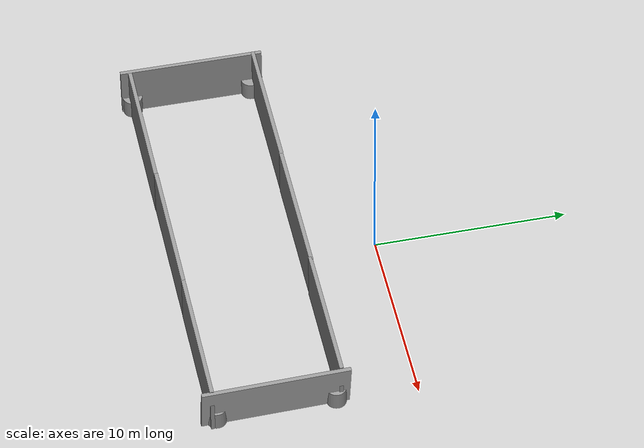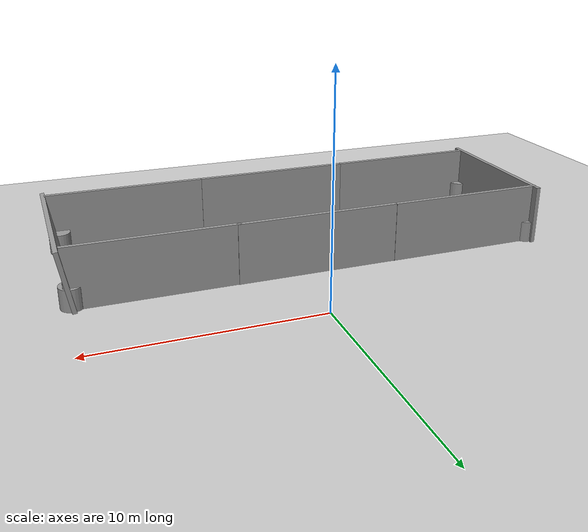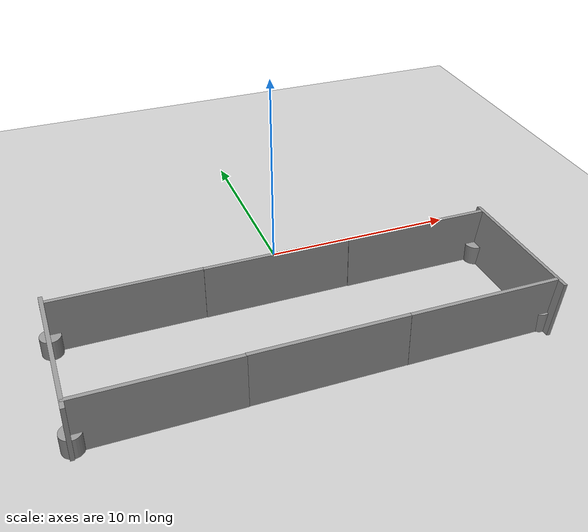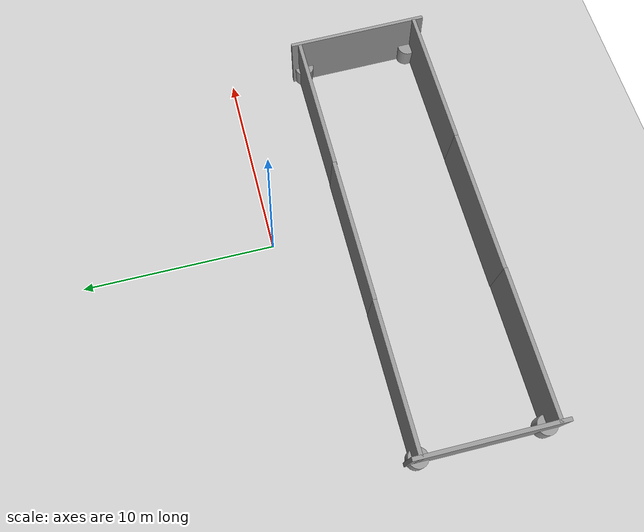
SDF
<sdf version="1.6">
 <world name="default">
  <light name="sun" type="directional">
   <pose>0 0 10 0 -0 0</pose>
   <diffuse>0.8 0.8 0.8 1</diffuse>
   <specular>0.2 0.2 0.2 1</specular>
   <attenuation>
    <range>1000</range>
    <constant>0.9</constant>
    <linear>0.01</linear>
    <quadratic>0.001</quadratic>
   </attenuation>
   <direction>-0.5 0.1 -0.9</direction>
  </light>
  <model name="ground_plane">
   <static>1</static>
   <link name="link">
    <collision name="collision">
     <geometry><plane><normal>0 0 1</normal><size>100 100</size></plane></geometry>
     <surface>
      <contact><collide_bitmask>65535</collide_bitmask></contact>
      <friction><ode><mu>100</mu><mu2>50</mu2></ode></friction>
     </surface>
    </collision>
    <visual name="visual">
     <cast_shadows>0</cast_shadows>
     <geometry><plane><normal>0 0 1</normal><size>100 100</size></plane></geometry>
     <material>
      <script><uri>file://media/materials/scripts/gazebo.material</uri><name>Gazebo/Grey</name></script>
     </material>
    </visual>
   </link>
  </model>
  <gravity>0 0 -9.8</gravity>
  <magnetic_field>6e-06 2.3e-05 -4.2e-05</magnetic_field>
  <atmosphere type="adiabatic"/>
  <physics name="default_physics" default="0" type="ode">
   <max_step_size>0.001</max_step_size>
   <real_time_factor>1</real_time_factor>
   <real_time_update_rate>1000</real_time_update_rate>
  </physics>
  <scene><ambient>0.4 0.4 0.4 1</ambient><background>0.7 0.7 0.7 1</background><shadows>1</shadows></scene>
  <audio><device>default</device></audio>
  <spherical_coordinates>
   <surface_model>EARTH_WGS84</surface_model>
   <latitude_deg>0</latitude_deg>
   <longitude_deg>0</longitude_deg>
   <elevation>0</elevation>
   <heading_deg>0</heading_deg>
  </spherical_coordinates>
  <model name="grey_wall">
   <static>1</static>
   <link name="link">
    <pose>0 0 1.4 0 -0 0</pose>
    <collision name="collision"><geometry><box><size>7.5 0.2 2.8</size></box></geometry></collision>
    <visual name="visual">
     <cast_shadows>0</cast_shadows>
     <geometry><box><size>7.5 0.2 2.8</size></box></geometry>
     <material>
      <script>
       <uri>model://grey_wall/materials/scripts</uri>
       <uri>model://grey_wall/materials/textures</uri>
       <name>vrc/grey_wall</name>
      </script>
     </material>
    </visual>
   </link>
   <pose>-8.52642 -3.8725 0 0 -0 0</pose>
  </model>
  <model name="grey_wall_0">
   <static>1</static>
   <link name="link">
    <pose>0 0 1.4 0 -0 0</pose>
    <collision name="collision"><geometry><box><size>7.5 0.2 2.8</size></box></geometry></collision>
    <visual name="visual">
     <cast_shadows>0</cast_shadows>
     <geometry><box><size>7.5 0.2 2.8</size></box></geometry>
     <material>
      <script>
       <uri>model://grey_wall/materials/scripts</uri>
       <uri>model://grey_wall/materials/textures</uri>
       <name>vrc/grey_wall</name>
      </script>
     </material>
    </visual>
   </link>
   <pose>-1.03605 -3.88786 0 0 -0 0</pose>
  </model>
  <model name="grey_wall_1">
   <static>1</static>
   <link name="link">
    <pose>0 0 1.4 0 -0 0</pose>
    <collision name="collision"><geometry><box><size>7.5 0.2 2.8</size></box></geometry></collision>
    <visual name="visual">
     <cast_shadows>0</cast_shadows>
     <geometry><box><size>7.5 0.2 2.8</size></box></geometry>
     <material>
      <script>
       <uri>model://grey_wall/materials/scripts</uri>
       <uri>model://grey_wall/materials/textures</uri>
       <name>vrc/grey_wall</name>
      </script>
     </material>
    </visual>
   </link>
   <pose>6.29541 -3.91246 0 0 -0 0</pose>
  </model>
  <model name="grey_wall_2_clone">
   <static>1</static>
   <link name="link">
    <pose>0 0 1.4 0 -0 0</pose>
    <collision name="collision"><geometry><box><size>7.5 0.2 2.8</size></box></geometry></collision>
    <visual name="visual">
     <cast_shadows>0</cast_shadows>
     <geometry><box><size>7.5 0.2 2.8</size></box></geometry>
     <material>
      <script>
       <uri>model://grey_wall/materials/scripts</uri>
       <uri>model://grey_wall/materials/textures</uri>
       <name>vrc/grey_wall</name>
      </script>
     </material>
    </visual>
   </link>
   <pose>9.75371 -7.21646 0.001437 -0.167311 0.00031 -1.55456</pose>
  </model>
  <model name="grey_wall_2_clone_2">
   <static>1</static>
   <link name="link">
    <pose>0 0 1.4 0 -0 0</pose>
    <collision name="collision"><geometry><box><size>7.5 0.2 2.8</size></box></geometry></collision>
    <visual name="visual">
     <cast_shadows>0</cast_shadows>
     <geometry><box><size>7.5 0.2 2.8</size></box></geometry>
     <material>
      <script>
       <uri>model://grey_wall/materials/scripts</uri>
       <uri>model://grey_wall/materials/textures</uri>
       <name>vrc/grey_wall</name>
      </script>
     </material>
    </visual>
   </link>
   <pose>-12.185 -7.19251 0 0 0 -1.57476</pose>
  </model>
  <model name="grey_wall_clone">
   <static>1</static>
   <link name="link">
    <pose>0 0 1.4 0 -0 0</pose>
    <collision name="collision"><geometry><box><size>7.5 0.2 2.8</size></box></geometry></collision>
    <visual name="visual">
     <cast_shadows>0</cast_shadows>
     <geometry><box><size>7.5 0.2 2.8</size></box></geometry>
     <material>
      <script>
       <uri>model://grey_wall/materials/scripts</uri>
       <uri>model://grey_wall/materials/textures</uri>
       <name>vrc/grey_wall</name>
      </script>
     </material>
    </visual>
   </link>
   <pose>-8.50021 -10.4402 0 0 -0 0</pose>
  </model>
  <model name="grey_wall_clone_0">
   <static>1</static>
   <link name="link">
    <pose>0 0 1.4 0 -0 0</pose>
    <collision name="collision"><geometry><box><size>7.5 0.2 2.8</size></box></geometry></collision>
    <visual name="visual">
     <cast_shadows>0</cast_shadows>
     <geometry><box><size>7.5 0.2 2.8</size></box></geometry>
     <material>
      <script>
       <uri>model://grey_wall/materials/scripts</uri>
       <uri>model://grey_wall/materials/textures</uri>
       <name>vrc/grey_wall</name>
      </script>
     </material>
    </visual>
   </link>
   <pose>-1.03203 -10.4213 0 0 -0 0</pose>
  </model>
  <model name="grey_wall_clone_1">
   <static>1</static>
   <link name="link">
    <pose>0 0 1.4 0 -0 0</pose>
    <collision name="collision"><geometry><box><size>7.5 0.2 2.8</size></box></geometry></collision>
    <visual name="visual">
     <cast_shadows>0</cast_shadows>
     <geometry><box><size>7.5 0.2 2.8</size></box></geometry>
     <material>
      <script>
       <uri>model://grey_wall/materials/scripts</uri>
       <uri>model://grey_wall/materials/textures</uri>
       <name>vrc/grey_wall</name>
      </script>
     </material>
    </visual>
   </link>
   <pose>6.45832 -10.4285 0 0 -0 0</pose>
  </model>
  <model name="unit_cylinder_0">
   <pose>-12.0728 -4.0569 0.499997 3e-06 -2e-06 0.000613</pose>
   <link name="link">
    <inertial>
     <mass>1</mass>
     <inertia><ixx>0.145833</ixx><ixy>0</ixy><ixz>0</ixz><iyy>0.145833</iyy><iyz>0</iyz><izz>0.125</izz></inertia>
    </inertial>
    <collision name="collision">
     <geometry><cylinder><radius>0.5</radius><length>1</length></cylinder></geometry>
    </collision>
    <visual name="visual">
     <geometry><cylinder><radius>0.5</radius><length>1</length></cylinder></geometry>
     <material>
      <script><name>Gazebo/Grey</name><uri>file://media/materials/scripts/gazebo.material</uri></script>
     </material>
    </visual>
   </link>
  </model>
  <model name="unit_cylinder_1">
   <pose>-12.0906 -10.3775 0.499997 4e-06 3e-06 0.023928</pose>
   <link name="link">
    <inertial>
     <mass>1</mass>
     <inertia><ixx>0.145833</ixx><ixy>0</ixy><ixz>0</ixz><iyy>0.145833</iyy><iyz>0</iyz><izz>0.125</izz></inertia>
    </inertial>
    <collision name="collision">
     <geometry><cylinder><radius>0.5</radius><length>1</length></cylinder></geometry>
    </collision>
    <visual name="visual">
     <geometry><cylinder><radius>0.5</radius><length>1</length></cylinder></geometry>
     <material>
      <script><name>Gazebo/Grey</name><uri>file://media/materials/scripts/gazebo.material</uri></script>
     </material>
    </visual>
   </link>
  </model>
  <model name="unit_cylinder_2">
   <pose>9.72445 -10.1551 0.499997 3e-06 4e-06 0.027335</pose>
   <link name="link">
    <inertial>
     <mass>1</mass>
     <inertia><ixx>0.145833</ixx><ixy>0</ixy><ixz>0</ixz><iyy>0.145833</iyy><iyz>0</iyz><izz>0.125</izz></inertia>
    </inertial>
    <collision name="collision">
     <geometry><cylinder><radius>0.5</radius><length>1</length></cylinder></geometry>
    </collision>
    <visual name="visual">
     <geometry><cylinder><radius>0.5</radius><length>1</length></cylinder></geometry>
     <material>
      <script><name>Gazebo/Grey</name><uri>file://media/materials/scripts/gazebo.material</uri></script>
     </material>
    </visual>
   </link>
  </model>
  <model name="unit_cylinder_3">
   <pose>9.73521 -4.11568 0.499998 3e-06 -3e-06 0.036747</pose>
   <link name="link">
    <inertial>
     <mass>1</mass>
     <inertia><ixx>0.145833</ixx><ixy>0</ixy><ixz>0</ixz><iyy>0.145833</iyy><iyz>0</iyz><izz>0.125</izz></inertia>
    </inertial>
    <collision name="collision">
     <geometry><cylinder><radius>0.5</radius><length>1</length></cylinder></geometry>
    </collision>
    <visual name="visual">
     <geometry><cylinder><radius>0.5</radius><length>1</length></cylinder></geometry>
     <material>
      <script><name>Gazebo/Grey</name><uri>file://media/materials/scripts/gazebo.material</uri></script>
     </material>
    </visual>
   </link>
  </model>
 </world>
</sdf>
